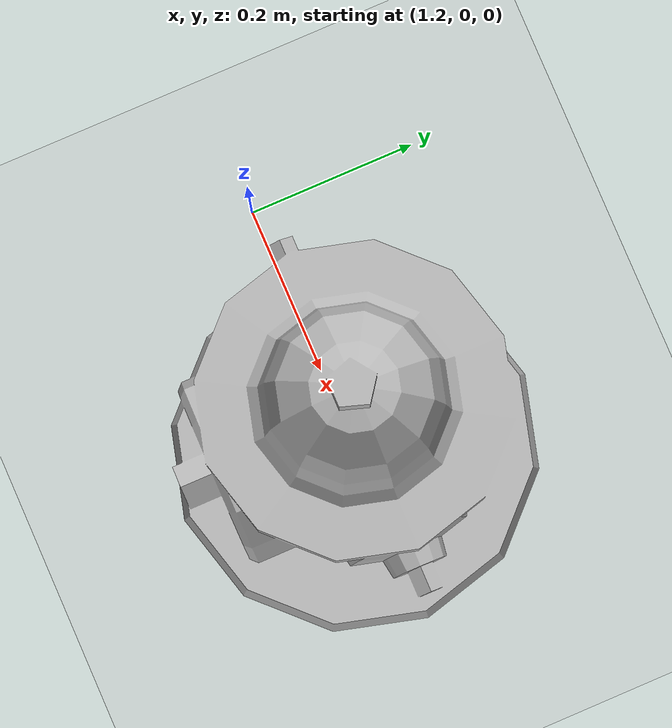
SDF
<?xml version="1.0" ?>
<sdf version="1.6">
  <world name="default">
    <spherical_coordinates>
      <surface_model>EARTH_WGS84</surface_model>
      <latitude_deg>42.3097</latitude_deg>
      <longitude_deg>-71.0959</longitude_deg>
      <elevation>141.0</elevation>
    </spherical_coordinates>
    <gui>
      <camera name="user_camera">
        <pose>-5 0 1 0 0.2 0</pose>
      </camera>
    </gui>
    <physics name='default_physics' default='0' type='ode'>
      <gravity>0 0 -9.8066</gravity>
      <ode>
        <solver>
          <type>quick</type>
          <iters>10</iters>
          <sor>1.3</sor>
          <use_dynamic_moi_rescaling>0</use_dynamic_moi_rescaling>
        </solver>
        <constraints>
          <cfm>0</cfm>
          <erp>0.2</erp>
          <contact_max_correcting_vel>100</contact_max_correcting_vel>
          <contact_surface_layer>0.001</contact_surface_layer>
        </constraints>
      </ode>
      <max_step_size>0.004</max_step_size>
      <real_time_factor>1</real_time_factor>
      <real_time_update_rate>250</real_time_update_rate>
      <magnetic_field>6.0e-6 2.3e-5 -4.2e-5</magnetic_field>
    </physics>
    <gravity>0 0 -9.8</gravity>
    <include>
      <uri>model://sun</uri>
    </include>

    <model name="ground_plane">
      <static>true</static>
      <link name="link">
        <collision name="collision">
          <geometry>
            <plane>
              <normal>0 0 1</normal>
              <size>5000 5000</size>
            </plane>
          </geometry>
          <surface>
            <friction>
              <ode>
                <mu>100</mu>
                <mu2>50</mu2>
              </ode>
            </friction>
          </surface>
        </collision>
        <visual name="runway">
          <pose>000 0 0.005 0 0 0</pose>
          <cast_shadows>false</cast_shadows>
          <geometry>
            <plane>
              <normal>0 0 1</normal>
              <size>1829 45</size>
            </plane>
          </geometry>
          <material>
            <script>
              <uri>file://media/materials/scripts/gazebo.material</uri>
              <name>Gazebo/Runway</name>
            </script>
          </material>
        </visual>

        <visual name="grass">
          <pose>0 0 -0.1 0 0 0</pose>
          <cast_shadows>false</cast_shadows>
          <geometry>
            <plane>
              <normal>0 0 1</normal>
              <size>5000 5000</size>
            </plane>
          </geometry>
          <material>
            <script>
              <uri>file://media/materials/scripts/gazebo.material</uri>
              <name>Gazebo/Grass</name>
            </script>
          </material>
        </visual>

      </link>
    </model>

    <include>
      <name>hydrant_0</name>
      <uri>model://fire_hydrant</uri>
      <pose frame=''>1.5 0 -0.1 0 0 0</pose>
    </include>

  </world>
</sdf>

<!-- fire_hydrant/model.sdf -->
<sdf version="1.5">
  <model name="fire_hydrant">
    <static>true</static>
    <link name="link">
      <collision name="collision">
        <geometry>
          <mesh>
            <uri>file://isr-testbed/fire_hydrant/meshes/fire_hydrant.dae</uri>
          </mesh>
        </geometry>
      </collision>
      <visual name="visual">
        <geometry>
          <mesh>
            <uri>file://isr-testbed/fire_hydrant/meshes/fire_hydrant.dae</uri>
          </mesh>
        </geometry>
      </visual>
    </link>
  </model>
</sdf>
